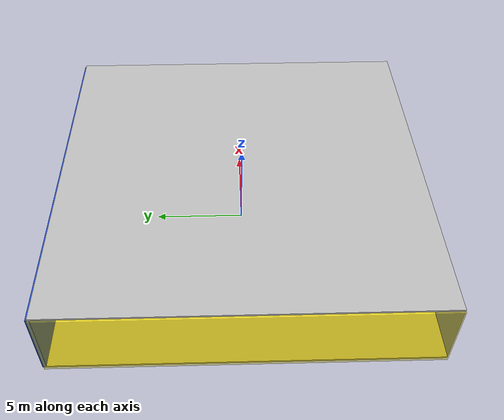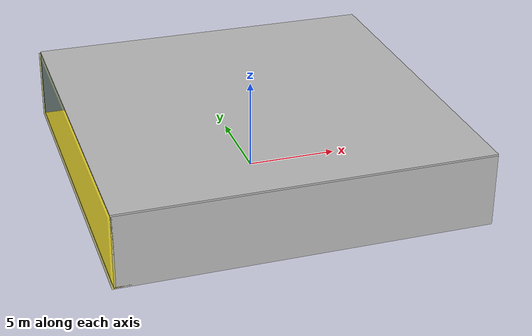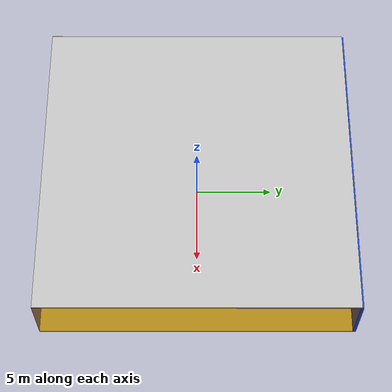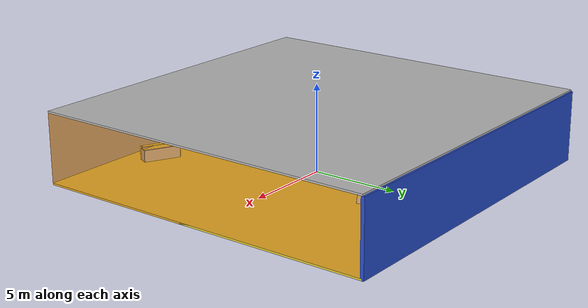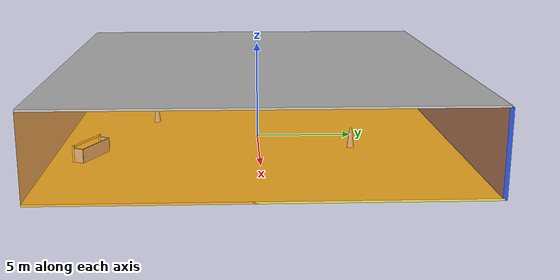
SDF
<sdf version="1.4">
 <world name="default">
  <physics type="ode">
   <max_step_size>0.001</max_step_size>
   <real_time_factor>1</real_time_factor>
   <real_time_update_rate>1000</real_time_update_rate>
   <gravity>0 0 -9.8</gravity>
  </physics>
  <scene><ambient>0.4 0.4 0.4 1</ambient><background>0.7 0.7 0.7 1</background><shadows>1</shadows></scene>
  <model name="Surrounding">
   <static>1</static>
   <link name="Ceiling">
    <collision name="Ceiling_Collision"><geometry><box><size>20 20 0.1</size></box></geometry></collision>
    <visual name="Ceiling_Visual">
     <geometry><box><size>20 20 0.1</size></box></geometry>
     <material>
      <script><uri>file://media/materials/scripts/gazebo.material</uri><name>Gazebo/PioneerBody</name></script>
     </material>
    </visual>
    <pose>0 0 4.05 0 0 0</pose>
   </link>
   <link name="Wall_South">
    <collision name="Wall_South_Collision">
     <geometry><box><size>20 0 4</size></box></geometry>
     <pose>0 0 2 0 -0 0</pose>
    </collision>
    <visual name="Wall_South_Visual">
     <pose>0 0 2 0 -0 0</pose>
     <geometry><box><size>20 0 4</size></box></geometry>
     <material>
      <script><uri>file://media/materials/scripts/gazebo.material</uri><name>Gazebo/LightOn</name></script>
     </material>
    </visual>
    <velocity_decay><linear>0</linear><angular>0</angular></velocity_decay>
    <pose>0 -10 0 0 -0 0</pose>
   </link>
   <link name="Wall_East">
    <collision name="Wall_21_Collision">
     <geometry><box><size>20 0 4</size></box></geometry>
     <pose>0 0 2 0 -0 0</pose>
    </collision>
    <visual name="Wall_21_Visual">
     <pose>0 0 2 0 -0 0</pose>
     <geometry><box><size>20 0 4</size></box></geometry>
     <material>
      <script>
       <uri>file://media/materials/scripts/gazebo.material</uri>
       <name>Gazebo/OrangeTransparent</name>
      </script>
     </material>
    </visual>
    <velocity_decay><linear>0</linear><angular>0</angular></velocity_decay>
    <pose>10 0 0 0 -0 1.5708</pose>
   </link>
   <link name="Wall_North">
    <collision name="Wall_22_Collision">
     <geometry><box><size>20 0.2 4</size></box></geometry>
     <pose>0 0 2 0 -0 0</pose>
    </collision>
    <visual name="Wall_22_Visual">
     <pose>0 0 2 0 -0 0</pose>
     <geometry><box><size>20 0.2 4</size></box></geometry>
     <material>
      <script><uri>file://media/materials/scripts/gazebo.material</uri><name>Gazebo/Blue</name></script>
     </material>
    </visual>
    <velocity_decay><linear>0</linear><angular>0</angular></velocity_decay>
    <pose>0 10 0 0 -0 0</pose>
   </link>
   <link name="Wall_West">
    <collision name="Wall_23_Collision">
     <geometry><box><size>20 0.2 4</size></box></geometry>
     <pose>0 0 2 0 -0 0</pose>
    </collision>
    <visual name="Wall_23_Visual">
     <pose>0 0 2 0 -0 0</pose>
     <geometry><box><size>20 0.2 4</size></box></geometry>
     <material>
      <script>
       <uri>file://media/materials/scripts/gazebo.material</uri>
       <name>Gazebo/YellowTransparent</name>
      </script>
     </material>
    </visual>
    <velocity_decay><linear>0</linear><angular>0</angular></velocity_decay>
    <pose>-10 0 0 0 0 -1.5708</pose>
   </link>
   <link name="Ground_link">
    <collision name="collision">
     <pose>0 0 .05 0 -0 0</pose>
     <geometry><box><size>20 20 0.1</size></box></geometry>
    </collision>
    <visual name="visual">
     <pose>0 0 .05 0 -0 0</pose>
     <geometry><box><size>20 20 0.1</size></box></geometry>
     <material>
      <script><uri>file://media/materials/scripts/gazebo.material</uri><name>Gazebo/ZincYellow</name></script>
     </material>
    </visual>
   </link>
   <static>1</static>
  </model>
  <spherical_coordinates>
   <surface_model>EARTH_WGS84</surface_model>
   <latitude_deg>0</latitude_deg>
   <longitude_deg>0</longitude_deg>
   <elevation>0</elevation>
   <heading_deg>0</heading_deg>
  </spherical_coordinates>
  <light name="lightball_0" type="diffuse">
   <diffuse>0.8 0.8 0.8 1</diffuse>
   <specular>0.2 0.2 0.2 1</specular>
   <attenuation>
    <range>100</range>
    <constant>0.7</constant>
    <linear>0.01</linear>
    <quadratic>0.001</quadratic>
   </attenuation>
   <direction>-0.5 0.1 -0.9</direction>
   <pose>2.10417566559 -8.94975376811 1.66000041229 0 0 0</pose>
  </light>
  <light name="lightball_1" type="diffuse">
   <diffuse>0.8 0.8 0.8 1</diffuse>
   <specular>0.2 0.2 0.2 1</specular>
   <attenuation>
    <range>100</range>
    <constant>0.7</constant>
    <linear>0.01</linear>
    <quadratic>0.001</quadratic>
   </attenuation>
   <direction>-0.5 0.1 -0.9</direction>
   <pose>-3.78044531132 -0.915806129598 2.23155090836 0 0 0</pose>
  </light>
  <light name="lightball_2" type="diffuse">
   <diffuse>0.8 0.8 0.8 1</diffuse>
   <specular>0.2 0.2 0.2 1</specular>
   <attenuation>
    <range>100</range>
    <constant>0.7</constant>
    <linear>0.01</linear>
    <quadratic>0.001</quadratic>
   </attenuation>
   <direction>-0.5 0.1 -0.9</direction>
   <pose>-9.77001412138 3.30040958219 0.814612259775 0 0 0</pose>
  </light>
  <light name="lightball_3" type="diffuse">
   <diffuse>0.8 0.8 0.8 1</diffuse>
   <specular>0.2 0.2 0.2 1</specular>
   <attenuation>
    <range>100</range>
    <constant>0.7</constant>
    <linear>0.01</linear>
    <quadratic>0.001</quadratic>
   </attenuation>
   <direction>-0.5 0.1 -0.9</direction>
   <pose>6.23555828237 2.76298974951 2.43288658715 0 0 0</pose>
  </light>
  <light name="lightball_4" type="diffuse">
   <diffuse>0.8 0.8 0.8 1</diffuse>
   <specular>0.2 0.2 0.2 1</specular>
   <attenuation>
    <range>100</range>
    <constant>0.7</constant>
    <linear>0.01</linear>
    <quadratic>0.001</quadratic>
   </attenuation>
   <direction>-0.5 0.1 -0.9</direction>
   <pose>-0.742597990256 7.16979260932 1.14317290082 0 0 0</pose>
  </light>
  <light name="lightball_5" type="diffuse">
   <diffuse>0.8 0.8 0.8 1</diffuse>
   <specular>0.2 0.2 0.2 1</specular>
   <attenuation>
    <range>100</range>
    <constant>0.7</constant>
    <linear>0.01</linear>
    <quadratic>0.001</quadratic>
   </attenuation>
   <direction>-0.5 0.1 -0.9</direction>
   <pose>-6.79150996012 8.19857501104 2.93646394048 0 0 0</pose>
  </light>
  <light name="lightball_6" type="diffuse">
   <diffuse>0.8 0.8 0.8 1</diffuse>
   <specular>0.2 0.2 0.2 1</specular>
   <attenuation>
    <range>100</range>
    <constant>0.7</constant>
    <linear>0.01</linear>
    <quadratic>0.001</quadratic>
   </attenuation>
   <direction>-0.5 0.1 -0.9</direction>
   <pose>5.24297699212 7.18691890002 1.93403497991 0 0 0</pose>
  </light>
  <light name="lightball_7" type="diffuse">
   <diffuse>0.8 0.8 0.8 1</diffuse>
   <specular>0.2 0.2 0.2 1</specular>
   <attenuation>
    <range>100</range>
    <constant>0.7</constant>
    <linear>0.01</linear>
    <quadratic>0.001</quadratic>
   </attenuation>
   <direction>-0.5 0.1 -0.9</direction>
   <pose>4.50784186248 6.98680191475 1.51616025008 0 0 0</pose>
  </light>
  <light name="lightball_8" type="diffuse">
   <diffuse>0.8 0.8 0.8 1</diffuse>
   <specular>0.2 0.2 0.2 1</specular>
   <attenuation>
    <range>100</range>
    <constant>0.7</constant>
    <linear>0.01</linear>
    <quadratic>0.001</quadratic>
   </attenuation>
   <direction>-0.5 0.1 -0.9</direction>
   <pose>7.74751796579 4.43792049949 3.01075412791 0 0 0</pose>
  </light>
  <include>
   <uri>model://construction_cone</uri>
   <pose>-2.68154703955 -5.56673298001 0 0 0 1.16361847233</pose>
  </include>
  <include>
   <uri>model://construction_cone</uri>
   <pose>2.54068278956 4.64057567505 0 0 0 1.27413579027</pose>
  </include>
  <include>
   <uri>model://robocup_3Dsim_goal</uri>
   <pose>3.52821918678 -8.43642792524 0 0 0 1.10157645545</pose>
  </include>
 </world>
</sdf>

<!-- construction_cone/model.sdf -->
<sdf version="1.5">
  <model name="Construction Cone">
    <link name="link">
      <collision name="collision">
        <geometry>
          <mesh>
            <scale>10 10 10</scale>
            <uri>file://isr-testbed/construction_cone/meshes/construction_cone.dae</uri>
          </mesh>
        </geometry>
      </collision>
      <visual name="visual">
        <geometry>
          <mesh>
            <scale>10 10 10</scale>
            <uri>file://isr-testbed/construction_cone/meshes/construction_cone.dae</uri>
          </mesh>
        </geometry>
      </visual>
    </link>
  </model>
</sdf>

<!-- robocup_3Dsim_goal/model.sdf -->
<sdf version="1.5">
  <model name="robocup_3d_goal">
    <static>true</static>
    <link name="left_post">
      <pose>0 1.05 0.45 0 0 0</pose>
      <collision name="collision">
        <geometry>
          <cylinder>
            <radius>0.05</radius>
            <length>0.9</length>
          </cylinder>
        </geometry>
      </collision>
      <visual name="visual">
        <geometry>
          <cylinder>
            <radius>0.05</radius>
            <length>0.9</length>
          </cylinder>
        </geometry>
        <material>
          <script>
            <uri>file://media/materials/scripts/gazebo.material</uri>
            <name>Gazebo/ZincYellow</name>
          </script>
        </material>
      </visual>
    </link>
    <link name="left_support_horiz_lower">
      <pose>0.30 1.05 0.01 0 0 0</pose>
      <collision name="collision">
        <geometry>
          <box>
            <size>0.50 0.02 0.02</size>
          </box>
        </geometry>
      </collision>
      <visual name="visual">
        <geometry>
          <box>
            <size>0.50 0.02 0.02</size>
          </box>
        </geometry>
        <material>
          <script>
            <uri>file://media/materials/scripts/gazebo.material</uri>
            <name>Gazebo/White</name>
          </script>
        </material>
      </visual>
    </link>
    <link name="left_support_horiz_upper">
      <pose>0.30 1.05 0.79 0 0 0</pose>
      <collision name="collision">
        <geometry>
          <box>
            <size>0.50 0.02 0.02</size>
          </box>
        </geometry>
      </collision>
      <visual name="visual">
        <geometry>
          <box>
            <size>0.50 0.02 0.02</size>
          </box>
        </geometry>
        <material>
          <script>
            <uri>file://media/materials/scripts/gazebo.material</uri>
            <name>Gazebo/White</name>
          </script>
        </material>
      </visual>
    </link>
    <link name="left_support_vertical">
      <pose>0.56 1.05 0.4 0 1.5708 0</pose>
      <collision name="collision">
        <geometry>
          <box>
            <size>0.80 0.02 0.02</size>
          </box>
        </geometry>
      </collision>
      <visual name="visual">
        <geometry>
          <box>
            <size>0.80 0.02 0.02</size>
          </box>
        </geometry>
        <material>
          <script>
            <uri>file://media/materials/scripts/gazebo.material</uri>
            <name>Gazebo/White</name>
          </script>
        </material>
      </visual>
    </link>
    <link name="right_support_horiz_lower">
      <pose>0.30 -1.05 0.01 0 0 0</pose>
      <collision name="collision">
        <geometry>
          <box>
            <size>0.50 0.02 0.02</size>
          </box>
        </geometry>
      </collision>
      <visual name="visual">
        <geometry>
          <box>
            <size>0.50 0.02 0.02</size>
          </box>
        </geometry>
        <material>
          <script>
            <uri>file://media/materials/scripts/gazebo.material</uri>
            <name>Gazebo/White</name>
          </script>
        </material>
      </visual>
    </link>
    <link name="right_support_horiz_upper">
      <pose>0.30 -1.05 0.79 0 0 0</pose>
      <collision name="collision">
        <geometry>
          <box>
            <size>0.50 0.02 0.02</size>
          </box>
        </geometry>
      </collision>
      <visual name="visual">
        <geometry>
          <box>
            <size>0.50 0.02 0.02</size>
          </box>
        </geometry>
        <material>
          <script>
            <uri>file://media/materials/scripts/gazebo.material</uri>
            <name>Gazebo/White</name>
          </script>
        </material>
      </visual>
    </link>
    <link name="right_support_vertical">
      <pose>0.56 -1.05 0.4 0 1.5708 0</pose>
      <collision name="collision">
        <geometry>
          <box>
            <size>0.80 0.02 0.02</size>
          </box>
        </geometry>
      </collision>
      <visual name="visual">
        <geometry>
          <box>
            <size>0.80 0.02 0.02</size>
          </box>
        </geometry>
        <material>
          <script>
            <uri>file://media/materials/scripts/gazebo.material</uri>
            <name>Gazebo/White</name>
          </script>
        </material>
      </visual>
    </link>
    <link name="center_support_horiz_lower">
      <pose>0.56 0 0.01 0 1.5708 0</pose>
      <collision name="collision">
        <geometry>
          <box>
            <size>0.02 2.08 0.02</size>
          </box>
        </geometry>
      </collision>
      <visual name="visual">
        <geometry>
          <box>
            <size>0.02 2.08 0.02</size>
          </box>
        </geometry>
        <material>
          <script>
            <uri>file://media/materials/scripts/gazebo.material</uri>
            <name>Gazebo/White</name>
          </script>
        </material>
      </visual>
    </link>
    <link name="center_support_horiz_upper">
      <pose>0.56 0 0.79 0 1.5708 0</pose>
      <collision name="collision">
        <geometry>
          <box>
            <size>0.02 2.08 0.02</size>
          </box>
        </geometry>
      </collision>
      <visual name="visual">
        <geometry>
          <box>
            <size>0.02 2.08 0.02</size>
          </box>
        </geometry>
        <material>
          <script>
            <uri>file://media/materials/scripts/gazebo.material</uri>
            <name>Gazebo/White</name>
          </script>
        </material>
      </visual>
    </link>
    <link name="right_post">
      <pose>0 -1.05 0.45 0 0 0</pose>
      <collision name="collision">
        <geometry>
          <cylinder>
            <radius>0.05</radius>
            <length>0.9</length>
          </cylinder>
        </geometry>
      </collision>
      <visual name="visual">
        <geometry>
          <cylinder>
            <radius>0.05</radius>
            <length>0.9</length>
          </cylinder>
        </geometry>
        <material>
          <script>
            <uri>file://media/materials/scripts/gazebo.material</uri>
            <name>Gazebo/ZincYellow</name>
          </script>
        </material>
      </visual>
    </link>
    <link name="crossbar">
      <pose>0 0 0.85 1.57 1.57 0</pose>
      <collision name="collision">
        <geometry>
          <cylinder>
            <radius>0.05</radius>
            <length>2.0</length>
          </cylinder>
        </geometry>
      </collision>
      <visual name="visual">
        <geometry>
          <cylinder>
            <radius>0.05</radius>
            <length>2.0</length>
          </cylinder>
        </geometry>
        <material>
          <script>
            <uri>file://media/materials/scripts/gazebo.material</uri>
            <name>Gazebo/ZincYellow</name>
          </script>
        </material>
      </visual>
    </link>
    <link name="center_net">
      <pose>0.56 0 0.40 0 0 0</pose>
      <collision name="collision">
        <geometry>
          <box>
            <size>0.01 2.1 0.80</size>
          </box>
        </geometry>
      </collision>
      <visual name="visual">
        <geometry>
          <box>
            <size>0.01 2.1 0.80</size>
          </box>
        </geometry>
        <material>
          <script>
            <uri>model://../model_source/models/robocup09_spl_field/materials/scripts/</uri>
            <uri>model://../model_source/models/robocup09_spl_field/materials/textures/</uri>
            <name>RoboCup/Net</name>
          </script>
        </material>
      </visual>
    </link>
    <link name="left_net">
      <pose>0.30 1.05 0.40 0 0 0</pose>
      <collision name="collision">
        <geometry>
          <box>
            <size>0.50 0.01 0.76</size>
          </box>
        </geometry>
      </collision>
      <visual name="visual">
        <geometry>
          <box>
            <size>0.50 0.01 0.76</size>
          </box>
        </geometry>
        <material>
          <script>
            <uri>model://../model_source/models/robocup09_spl_field/materials/scripts/</uri>
            <uri>model://../model_source/models/robocup09_spl_field/materials/textures/</uri>
            <name>RoboCup/Net</name>
          </script>
        </material>
      </visual>
    </link>
    <link name="right_net">
      <pose>0.30 -1.05 0.40 0 0 0</pose>
      <collision name="collision">
        <geometry>
          <box>
            <size>0.50 0.01 0.76</size>
          </box>
        </geometry>
      </collision>
      <visual name="visual">
        <geometry>
          <box>
            <size>0.50 0.01 0.76</size>
          </box>
        </geometry>
        <material>
          <script>
            <uri>model://../model_source/models/robocup09_spl_field/materials/scripts/</uri>
            <uri>model://../model_source/models/robocup09_spl_field/materials/textures/</uri>
            <name>RoboCup/Net</name>
          </script>
        </material>
      </visual>
    </link>
  </model>
</sdf>
